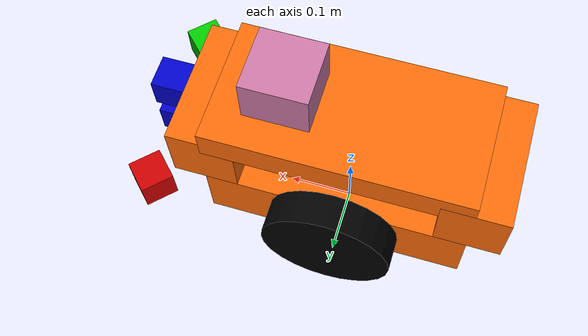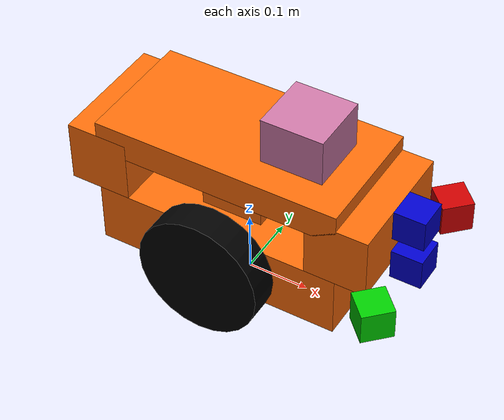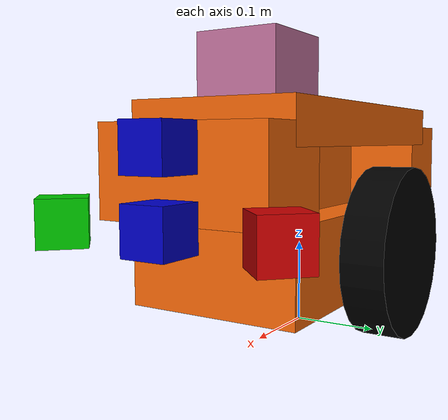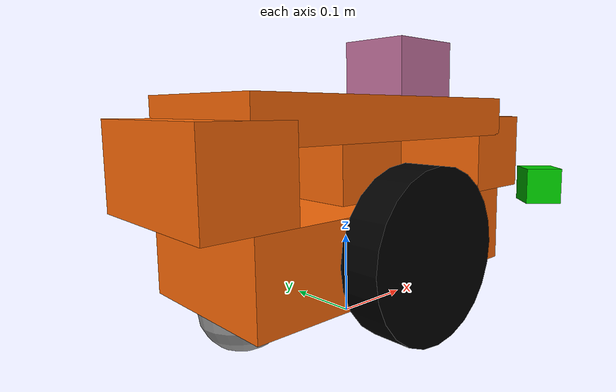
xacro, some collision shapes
<?xml version="1.0"?>

<robot name="mybot" xmlns:xacro="http://www.ros.org/wiki/xacro">

  <xacro:property name="PI" value="3.1415926535897931"/>

  <xacro:property name="chassisHeight" value="0.1"/>
  <xacro:property name="chassisLength" value="0.4"/>
  <xacro:property name="chassisWidth" value="0.2"/>
  <xacro:property name="chassisMass" value="50"/>

  <xacro:property name="casterRadius" value="0.05"/>
  <xacro:property name="casterMass" value="5"/>

  <xacro:property name="wheelWidth" value="0.05"/>
  <xacro:property name="wheelRadius" value="0.1"/>
  <xacro:property name="wheelPos" value="0.2"/>
  <xacro:property name="wheelMass" value="5"/>

  <xacro:property name="cameraSize" value="0.05"/>
  <xacro:property name="cameraMass" value="0.1"/>

  <xacro:property name="distanceSensorSize" value="0.05"/>
  <xacro:property name="distanceSensorMass" value="0.025"/>
  <xacro:property name="sensorBoxHeight" value="0.1"/>
  <xacro:property name="sensorBoxLength" value="0.1"/>
  <xacro:property name="sensorBoxWidth" value="0.2"/>
  <xacro:property name="sensorBoxMass" value="0.05"/>
  <xacro:property name="zHeight" value="0.1"/>
  <xacro:property name="topChassisMass" value="5"/>

  <xacro:include filename="$(find rover_description)/urdf/mybot.gazebo" />
  <xacro:include filename="$(find rover_description)/urdf/materials.xacro" />
  <xacro:include filename="$(find rover_description)/urdf/macros.xacro" />

  <link name="base_link" />

  <joint name="base_joint" type="fixed">
    <parent link="base_link"/>
    <child link="chassis"/>
  </joint>

  <link name="chassis">
    <collision>
      <origin xyz="0 0 ${wheelRadius}" rpy="0 0 0"/>
      <geometry>
	     <box size="${chassisLength} ${chassisWidth} ${chassisHeight}"/>
      </geometry>
    </collision>

    <visual>
      <origin xyz="0 0 ${wheelRadius}" rpy="0 0 0"/>
      <geometry>
	     <box size="${chassisLength} ${chassisWidth} ${chassisHeight}"/>
      </geometry>
      <material name="orange"/>
    </visual>

    <inertial>
      <origin xyz="0 0 ${wheelRadius}" rpy="0 0 0"/>
      <mass value="${chassisMass}"/>
      <box_inertia m="${chassisMass}" x="${chassisLength}" y="${chassisWidth}" z="${chassisHeight}"/>
    </inertial>
  </link>

  <link name="imu_link"/>
    <joint name="imu_joint" type="fixed">
      <origin xyz="0.1 0 0.14" rpy="0 -1.5708 3.1416" />
      <parent link="chassis" />
      <child link="imu_link" />
    </joint>

  <joint name="caster_wheel_joint" type="fixed">
    <parent link="chassis"/>
    <child link="caster_wheel"/>
  </joint>

  <link name="caster_wheel">

    <collision>
      <origin xyz="${casterRadius-chassisLength/2} 0 ${casterRadius-chassisHeight+wheelRadius}" rpy="0 0 0"/>
      <geometry>
	     <sphere radius="${casterRadius}"/>
      </geometry>
    </collision>

    <visual>
      <origin xyz="${casterRadius-chassisLength/2} 0 ${casterRadius-chassisHeight+wheelRadius}" rpy="0 0 0"/>
      <geometry>
	<sphere radius="${casterRadius}"/>
      </geometry>
    </visual>

    <inertial>
      <origin xyz="${casterRadius-chassisLength/2} 0 ${casterRadius-chassisHeight+wheelRadius}" rpy="0 0 0"/>
      <mass value="${casterMass}"/>
      <sphere_inertia m="${casterMass}" r="${casterRadius}"/>
    </inertial>
  </link>

  <link name="left_wheel">
  <collision>
    <origin xyz="0 0 0" rpy="0 ${PI/2} ${PI/2}" />
    <geometry>
      <cylinder length="${wheelWidth}" radius="${wheelRadius}"/>
    </geometry>
  </collision>

  <visual>
    <origin xyz="0 0 0" rpy="0 ${PI/2} ${PI/2}" />
    <geometry>
      <cylinder length="${wheelWidth}" radius="${wheelRadius}"/>
    </geometry>
    <material name="black"/>
  </visual>

  <inertial>
    <origin xyz="0 0 0" rpy="0 ${PI/2} ${PI/2}" />
    <mass value="${wheelMass}"/>
    <cylinder_inertia m="${wheelMass}" r="${wheelRadius}" h="${wheelWidth}"/>
  </inertial>
</link>

<joint name="left_wheel_hinge" type="continuous">
  <parent link="chassis"/>
  <child link="left_wheel"/>
  <origin xyz="${-wheelPos+chassisLength/2} ${1*wheelWidth/2+1*chassisWidth/2} ${wheelRadius}" rpy="0 -${PI/2} 0" />
  <axis xyz="0 1 0" rpy="0 0 0" />
  <limit effort="1000" velocity="1000"></limit>

</joint>

<link name="right_wheel">
  <collision>
    <origin xyz="0 0 0" rpy="0 ${PI/2} ${PI/2}" />
    <geometry>
      <cylinder length="${wheelWidth}" radius="${wheelRadius}"/>
    </geometry>
  </collision>

  <visual>
    <origin xyz="0 0 0" rpy="0 ${PI/2} ${PI/2}" />
    <geometry>
      <cylinder length="${wheelWidth}" radius="${wheelRadius}"/>
    </geometry>
    <material name="black"/>
  </visual>

  <inertial>
    <origin xyz="0 0 0" rpy="0 ${PI/2} ${PI/2}" />
    <mass value="${wheelMass}"/>
    <cylinder_inertia m="${wheelMass}" r="${wheelRadius}" h="${wheelWidth}"/>
  </inertial>
</link>

<joint name="right_wheel_hinge" type="continuous">
  <parent link="chassis"/>
  <child link="right_wheel"/>
  <origin xyz="${-wheelPos+chassisLength/2} ${-1*wheelWidth/2 + -1*chassisWidth/2} ${wheelRadius}" rpy="0 ${PI/2} 0" />
  <axis xyz="0 1 0" rpy="0 0 0" />
   <limit effort="1000" velocity="1000"></limit>
</joint>

<link name='sensor_box'>
  <collision>
    <origin xyz="0 0 0" rpy="0 0 0"/>
    <geometry>
      <box size="${sensorBoxLength} ${sensorBoxWidth} ${sensorBoxHeight}"/>
    </geometry>
  </collision>
  <visual>
    <origin xyz="0 0 0" rpy="0 0 0"/>
    <geometry>
      <box size="${sensorBoxLength} ${sensorBoxWidth} ${sensorBoxHeight}"/>
    </geometry>
    <material name="orange"/>
  </visual>
  <inertial>
    <origin xyz="0 0 0" rpy="0 0 0"/>
    <mass value="${sensorBoxMass}"/>
    <box_inertia m="${sensorBoxMass}" x="${sensorBoxLength}" y="${sensorBoxWidth}" z="${sensorBoxHeight}"/>
  </inertial>
</link>

<joint name="sensor_box_joint" type="fixed">
    <origin xyz="${chassisLength/2} 0 ${wheelRadius+sensorBoxHeight/2 + chassisHeight/2}" rpy="0 0 0"/>
    <parent link="chassis"/>
    <child link="sensor_box"/>
</joint>

<joint name="camera_joint" type="fixed">
    <origin xyz="${sensorBoxLength/2+cameraSize/2} 0 ${sensorBoxHeight/2-cameraSize/2}" rpy="0 0 0"/>
    <parent link="sensor_box"/>
    <child link="camera"/>
</joint>

<link name="camera">
  <collision>
    <origin xyz="0 0 0" rpy="0 0 0"/>
    <geometry>
      <box size="${cameraSize} ${cameraSize} ${cameraSize}"/>
    </geometry>
  </collision>

  <visual>
    <origin xyz="0 0 0" rpy="0 0 0"/>
    <geometry>
      <box size="${cameraSize} ${cameraSize} ${cameraSize}"/>
    </geometry>
    <material name="blue"/>
  </visual>

  <inertial>
    <mass value="${cameraMass}" />
    <origin xyz="0 0 0" rpy="0 0 0"/>
    <box_inertia m="${cameraMass}" x="${cameraSize}" y="${cameraSize}" z="${cameraSize}" />
  </inertial>
</link>

<joint name="center_distance_sensor_joint" type="fixed">
    <origin xyz="${sensorBoxLength/2 + distanceSensorSize/2} 0 ${sensorBoxHeight/2 - 2*cameraSize}" rpy="0 0 0"/>
    <parent link="sensor_box"/>
    <child link="center_distance_sensor"/>
</joint>

<link name="center_distance_sensor">
  <collision>
    <origin xyz="0 0 0" rpy="0 0 0"/>
    <geometry>
      <box size="${distanceSensorSize} ${distanceSensorSize} ${distanceSensorSize}"/>
    </geometry>
  </collision>

  <visual>
    <origin xyz="0 0 0" rpy="0 0 0"/>
    <geometry>
      <box size="${distanceSensorSize} ${distanceSensorSize} ${distanceSensorSize}"/>
    </geometry>
    <material name="blue"/>
  </visual>

  <inertial>
    <mass value="${distanceSensorMass}" />
    <origin xyz="0 0 0" rpy="0 0 0"/>
    <box_inertia m="${distanceSensorMass}" x="${distanceSensorSize}" y="${distanceSensorSize}" z="${distanceSensorSize}" />
  </inertial>
</link>

<joint name="left_distance_sensor_joint" type="fixed">
    <origin xyz="${sensorBoxLength/2 + distanceSensorSize/2} ${sensorBoxWidth/2 + distanceSensorSize/2} ${sensorBoxHeight/2 - 2*cameraSize}" rpy="0 0 ${PI/4}"/>
    <parent link="sensor_box"/>
    <child link="left_distance_sensor"/>
</joint>

<link name="left_distance_sensor">
  <collision>
    <origin xyz="0 0 0" rpy="0 0 0"/>
    <geometry>
      <box size="${distanceSensorSize} ${distanceSensorSize} ${distanceSensorSize}"/>
    </geometry>
  </collision>

  <visual>
    <origin xyz="0 0 0" rpy="0 0 0"/>
    <geometry>
      <box size="${distanceSensorSize} ${distanceSensorSize} ${distanceSensorSize}"/>
    </geometry>
    <material name="red"/>
  </visual>

  <inertial>
    <mass value="${distanceSensorMass}" />
    <origin xyz="0 0 0" rpy="0 0 0"/>
    <box_inertia m="${distanceSensorMass}" x="${distanceSensorSize}" y="${distanceSensorSize}" z="${distanceSensorSize}" />
  </inertial>
</link>

<joint name="right_distance_sensor_joint" type="fixed">
    <origin xyz="${sensorBoxLength/2 + distanceSensorSize/2} ${-sensorBoxWidth/2 - distanceSensorSize/2} ${sensorBoxHeight/2 - 2*cameraSize}" rpy="0 0 ${-PI/4}"/>
    <parent link="sensor_box"/>
    <child link="right_distance_sensor"/>
</joint>

<link name="right_distance_sensor">
  <collision>
    <origin xyz="0 0 0" rpy="0 0 0"/>
    <geometry>
      <box size="${distanceSensorSize} ${distanceSensorSize} ${distanceSensorSize}"/>
    </geometry>
  </collision>

  <visual>
    <origin xyz="0 0 0" rpy="0 0 0"/>
    <geometry>
      <box size="${distanceSensorSize} ${distanceSensorSize} ${distanceSensorSize}"/>
    </geometry>
    <material name="green"/>
  </visual>

  <inertial>
    <mass value="${distanceSensorMass}" />
    <origin xyz="0 0 0" rpy="0 0 0"/>
    <box_inertia m="${distanceSensorMass}" x="${distanceSensorSize}" y="${distanceSensorSize}" z="${distanceSensorSize}" />
  </inertial>
</link>

 <joint name="back_sensor_box_joint" type="fixed">
    <origin xyz="${-chassisLength/2} 0 ${wheelRadius+chassisHeight}" rpy="0 0 0"/>
    <parent link="chassis"/>
    <child link="back_sensor_box"/>
</joint>

<link name='back_sensor_box'>
  <collision>
    <origin xyz="0 0 0" rpy="0 0 0"/>
    <geometry>
      <box size="${sensorBoxLength} ${sensorBoxWidth} ${sensorBoxHeight}"/>
    </geometry>
  </collision>
  <visual>
    <origin xyz="0 0 0" rpy="0 0 0"/>
    <geometry>
      <box size="${sensorBoxLength} ${sensorBoxWidth} ${sensorBoxHeight}"/>
    </geometry>
    <material name="orange"/>
  </visual>
  <inertial>
    <origin xyz="0 0 0" rpy="0 0 0"/>
    <mass value="${sensorBoxMass}"/>
    <box_inertia m="${sensorBoxMass}" x="${sensorBoxLength}" y="${sensorBoxWidth}" z="${sensorBoxHeight}"/>
  </inertial>
</link>

<joint name="center_chassis_joint" type="fixed">
  <origin xyz="0 0 ${chassisHeight/2}" rpy="0 0 0"/>
  <parent link="chassis"/>
  <child link="center_box"/>
</joint>
<link name='center_box'>
  <collision>
    <origin xyz="0 0 ${zHeight}" rpy="0 0 0"/>
    <geometry>
      <box size="${chassisLength/4} ${chassisWidth/2} ${sensorBoxHeight + chassisWidth/2}"/>
    </geometry>
  </collision>
  <visual>
    <origin xyz="0 0 ${zHeight}" rpy="0 0 0"/>
    <geometry>
      <box size="${chassisLength/4} ${chassisWidth/2} ${sensorBoxHeight + chassisWidth/2}"/>
    </geometry>
    <material name="orange"/>
  </visual>
  <inertial>
    <origin xyz="0 0 ${zHeight}" rpy="0 0 0"/>
    <mass value="${topChassisMass}"/>
    <box_inertia m="${topChassisMass}" x="${chassisLength}" y="${chassisWidth}" z="${chassisHeight/2}"/>
  </inertial>
</link>

<joint name="top_chassis_joint" type="fixed">
  <origin xyz="0 0 ${sensorBoxHeight}" rpy="0 0 0"/>
  <parent link="center_box"/>
  <child link="top_chassis"/>
</joint>
<link name='top_chassis'>
  <collision>
    <origin xyz="0 0 ${zHeight}" rpy="0 0 0"/>
    <geometry>
      <box size="${chassisLength} ${chassisWidth} ${chassisHeight/2}"/>
    </geometry>
  </collision>
  <visual>
    <origin xyz="0 0 ${zHeight}" rpy="0 0 0"/>
    <geometry>
      <box size="${chassisLength} ${chassisWidth} ${chassisHeight/2}"/>
    </geometry>
    <material name="orange"/>
  </visual>
  <inertial>
    <origin xyz="0 0 ${zHeight}" rpy="0 0 0"/>
    <mass value="${topChassisMass}"/>
    <box_inertia m="${topChassisMass}" x="${chassisLength}" y="${chassisWidth}" z="${chassisHeight/2}"/>
  </inertial>
</link>

<joint name="hokuyo_joint" type="fixed">
<origin xyz="${zHeight} 0 ${sensorBoxHeight/2 + chassisHeight}" rpy="0 0 0"/>
<parent link="top_chassis"/>
<child link="hokuyo_lidar"/>
</joint>

<link name="hokuyo_lidar">
<collision>
  <origin xyz="0 0 0" rpy="0 0 0"/>
  <geometry>
    <box size="0.1 0.1 0.1"/>
  </geometry>
</collision>

<visual>
  <origin xyz="0 0 0" rpy="0 0 0"/>
  <geometry>
    <mesh filename="package://rover_gazebo/models/hukoyu.dae"/>
  </geometry>
</visual>

<inertial>
  <mass value="1e-5" />
  <origin xyz="0 0 0" rpy="0 0 0"/>
  <inertia ixx="1e-6" ixy="0" ixz="0" iyy="1e-6" iyz="0" izz="1e-6" />
</inertial>
</link>

<transmission name="right_trans">
    <type>transmission_interface/SimpleTransmission</type>
    <joint name="right_wheel_hinge"/>
    <actuator name="rightMotor">
      <hardwareInterface>EffortJointInterface</hardwareInterface>
      <mechanicalReduction>10</mechanicalReduction>
    </actuator>
  </transmission>

</robot>

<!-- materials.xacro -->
<robot name="rover_bot" xmlns:xacro="http://www.ros.org/wiki/xacro">
<material name="black">
  <color rgba="0.0 0.0 0.0 1.0"/>
</material>

<material name="blue">
  <color rgba="0.0 0.0 0.8 1.0"/>
</material>

<material name="green">
  <color rgba="0.0 0.8 0.0 1.0"/>
</material>

<material name="grey">
  <color rgba="0.2 0.2 0.2 1.0"/>
</material>

<material name="orange">
  <color rgba="${255/255} ${108/255} ${10/255} 1.0"/>
</material>

<material name="brown">
  <color rgba="${222/255} ${207/255} ${195/255} 1.0"/>
</material>

<material name="red">
  <color rgba="0.8 0.0 0.0 1.0"/>
</material>

<material name="white">
  <color rgba="1.0 1.0 1.0 1.0"/>
</material>
</robot>

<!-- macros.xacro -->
<robot name="rover_bot" xmlns:xacro="http://www.ros.org/wiki/xacro">
<xacro:macro name="cylinder_inertia" params="m r h">
  <inertia  ixx="${m*(3*r*r+h*h)/12}" ixy = "0" ixz = "0"
    iyy="${m*(3*r*r+h*h)/12}" iyz = "0"
    izz="${m*r*r/2}"
  />
</xacro:macro>

<xacro:macro name="box_inertia" params="m x y z">
  <inertia  ixx="${m*(y*y+z*z)/12}" ixy = "0" ixz = "0"
    iyy="${m*(x*x+z*z)/12}" iyz = "0"
    izz="${m*(x*x+z*z)/12}"
  />
</xacro:macro>

<xacro:macro name="sphere_inertia" params="m r">
  <inertia  ixx="${2*m*r*r/5}" ixy = "0" ixz = "0"
    iyy="${2*m*r*r/5}" iyz = "0"
    izz="${2*m*r*r/5}"
  />
</xacro:macro>
</robot>
